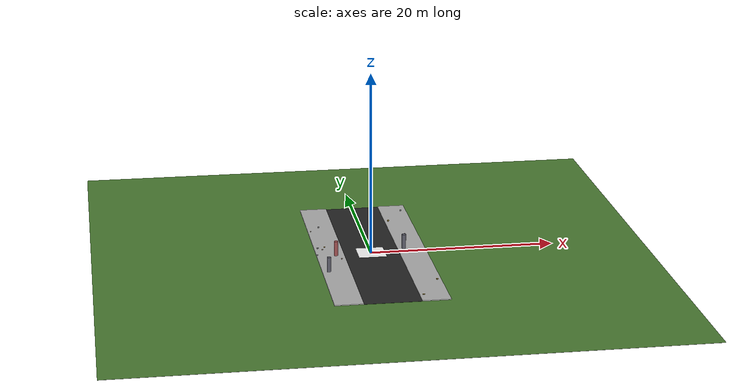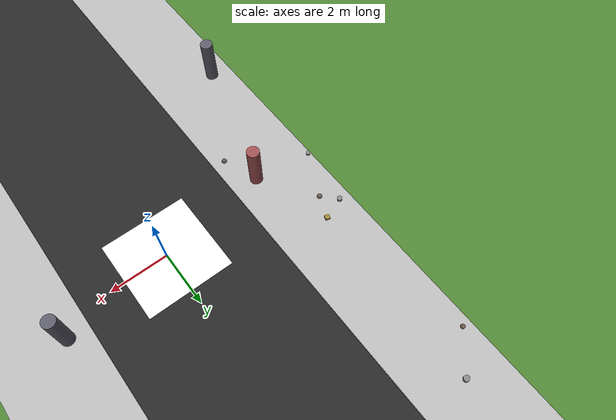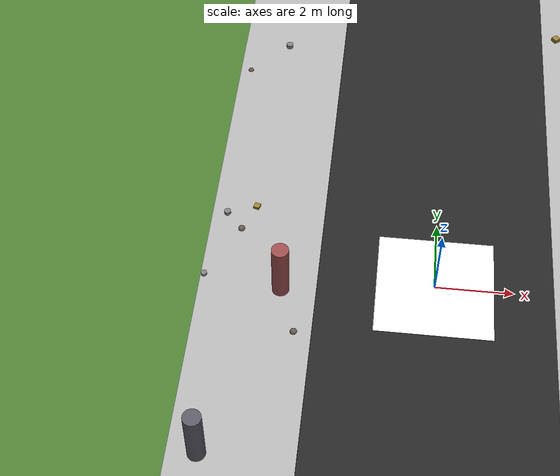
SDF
<?xml version="1.0" ?>
<sdf version="1.9">
  <world name="straight">
    <physics name="1ms" type="ignore">
      <max_step_size>0.001</max_step_size>
      <real_time_factor>1.0</real_time_factor>
    </physics>
    <plugin filename="gz-sim-physics-system" name="gz::sim::systems::Physics"/>
    <plugin filename="gz-sim-scene-broadcaster-system" name="gz::sim::systems::SceneBroadcaster"/>
    <plugin filename="gz-sim-sensors-system" name="gz::sim::systems::Sensors">
      <render_engine>ogre2</render_engine>
    </plugin>
    <plugin filename="gz-sim-user-commands-system" name="gz::sim::systems::UserCommands"/>

    <light type="directional" name="sun">
      <cast_shadows>true</cast_shadows>
      <pose>0 0 10 0 0 0</pose>
      <diffuse>0.8 0.8 0.8 1</diffuse>
      <specular>0.2 0.2 0.2 1</specular>
      <attenuation><range>1000</range><constant>0.9</constant><linear>0.01</linear><quadratic>0.001</quadratic></attenuation>
      <direction>-0.5 0.1 -0.9</direction>
    </light>

    <!-- 레이아웃 1: 직선형 -->

    <model name="ground_plane_visual">
      <static>true</static>
      <pose>0 0 -0.01 0 0 0</pose>
      <link name="link">
        <collision name="collision"><geometry><box><size>60.0 60.0 0.02</size></box></geometry></collision>
        <visual name="visual"><geometry><box><size>60.0 60.0 0.02</size></box></geometry>
          <material><ambient>0.3 0.5 0.2 1</ambient><diffuse>0.3 0.5 0.2 1</diffuse></material></visual>
      </link>
    </model>

    <model name="road">
      <static>true</static>
      <pose>0 0 0.01 0 0 0</pose>
      <link name="link">
        <collision name="collision"><geometry><box><size>6.0 30.0 0.02</size></box></geometry></collision>
        <visual name="visual"><geometry><box><size>6.0 30.0 0.02</size></box></geometry>
          <material><ambient>0.15 0.15 0.15 1</ambient><diffuse>0.15 0.15 0.15 1</diffuse></material></visual>
      </link>
    </model>

    <model name="sidewalk_left">
      <static>true</static>
      <pose>-4.5 0 0.05 0 0 0</pose>
      <link name="link">
        <collision name="collision"><geometry><box><size>3.0 30.0 0.1</size></box></geometry></collision>
        <visual name="visual"><geometry><box><size>3.0 30.0 0.1</size></box></geometry>
          <material><ambient>0.7 0.7 0.7 1</ambient><diffuse>0.7 0.7 0.7 1</diffuse></material></visual>
      </link>
    </model>

    <model name="sidewalk_right">
      <static>true</static>
      <pose>4.5 0 0.05 0 0 0</pose>
      <link name="link">
        <collision name="collision"><geometry><box><size>3.0 30.0 0.1</size></box></geometry></collision>
        <visual name="visual"><geometry><box><size>3.0 30.0 0.1</size></box></geometry>
          <material><ambient>0.7 0.7 0.7 1</ambient><diffuse>0.7 0.7 0.7 1</diffuse></material></visual>
      </link>
    </model>

    <model name="crosswalk_1">
      <static>true</static>
      <pose>0 0 0.02 0 0 0</pose>
      <link name="link">
        <collision name="collision"><geometry><box><size>3 3 0.01</size></box></geometry></collision>
        <visual name="visual"><geometry><box><size>3 3 0.01</size></box></geometry>
          <material><ambient>1 1 1 1</ambient><diffuse>1 1 1 1</diffuse></material></visual>
      </link>
    </model>

    <model name="straight_obstacle_0">
      <static>true</static>
      <pose>-4.84 2.11 0.10 0 0 1.29</pose>
      <link name="link">
        <collision name="collision"><geometry><box><size>0.16 0.16 0.16</size></box></geometry></collision>
        <visual name="visual"><geometry><box><size>0.16 0.16 0.16</size></box></geometry>
          <material><ambient>0.6 0.5 0.2 1</ambient><diffuse>0.6 0.5 0.2 1</diffuse></material></visual>
      </link>
    </model>

    <model name="straight_obstacle_1">
      <static>true</static>
      <pose>-5.91 -0.27 0.10 0 0 0</pose>
      <link name="link">
        <collision name="collision"><geometry><cylinder><radius>0.07766312713734719</radius><length>0.15532625427469438</length></cylinder></geometry></collision>
        <visual name="visual"><geometry><cylinder><radius>0.07766312713734719</radius><length>0.15532625427469438</length></cylinder></geometry>
          <material><ambient>0.5 0.5 0.5 1</ambient><diffuse>0.5 0.5 0.5 1</diffuse></material></visual>
      </link>
    </model>

    <model name="straight_obstacle_2">
      <static>true</static>
      <pose>3.42 9.72 0.12 0 0 0.66</pose>
      <link name="link">
        <collision name="collision"><geometry><box><size>0.19 0.19 0.19</size></box></geometry></collision>
        <visual name="visual"><geometry><box><size>0.19 0.19 0.19</size></box></geometry>
          <material><ambient>0.6 0.5 0.2 1</ambient><diffuse>0.6 0.5 0.2 1</diffuse></material></visual>
      </link>
    </model>

    <model name="straight_obstacle_3">
      <static>true</static>
      <pose>4.53 5.02 0.12 0 0 0</pose>
      <link name="link">
        <collision name="collision"><geometry><sphere><radius>0.09816462120183228</radius></sphere></geometry></collision>
        <visual name="visual"><geometry><sphere><radius>0.09816462120183228</radius></sphere></geometry>
          <material><ambient>0.4 0.35 0.3 1</ambient><diffuse>0.4 0.35 0.3 1</diffuse></material></visual>
      </link>
    </model>

    <model name="straight_obstacle_4">
      <static>true</static>
      <pose>5.37 13.03 0.13 0 0 0</pose>
      <link name="link">
        <collision name="collision"><geometry><cylinder><radius>0.10892858561417215</radius><length>0.2178571712283443</length></cylinder></geometry></collision>
        <visual name="visual"><geometry><cylinder><radius>0.10892858561417215</radius><length>0.2178571712283443</length></cylinder></geometry>
          <material><ambient>0.5 0.5 0.5 1</ambient><diffuse>0.5 0.5 0.5 1</diffuse></material></visual>
      </link>
    </model>

    <model name="straight_obstacle_5">
      <static>true</static>
      <pose>3.42 -13.39 0.10 0 0 0.84</pose>
      <link name="link">
        <collision name="collision"><geometry><box><size>0.16 0.16 0.16</size></box></geometry></collision>
        <visual name="visual"><geometry><box><size>0.16 0.16 0.16</size></box></geometry>
          <material><ambient>0.6 0.5 0.2 1</ambient><diffuse>0.6 0.5 0.2 1</diffuse></material></visual>
      </link>
    </model>

    <model name="straight_obstacle_6">
      <static>true</static>
      <pose>-5.15 1.32 0.11 0 0 0</pose>
      <link name="link">
        <collision name="collision"><geometry><sphere><radius>0.09026108351684428</radius></sphere></geometry></collision>
        <visual name="visual"><geometry><sphere><radius>0.09026108351684428</radius></sphere></geometry>
          <material><ambient>0.4 0.35 0.3 1</ambient><diffuse>0.4 0.35 0.3 1</diffuse></material></visual>
      </link>
    </model>

    <model name="straight_obstacle_7">
      <static>true</static>
      <pose>5.58 -9.28 0.10 0 0 0.37</pose>
      <link name="link">
        <collision name="collision"><geometry><box><size>0.17 0.17 0.17</size></box></geometry></collision>
        <visual name="visual"><geometry><box><size>0.17 0.17 0.17</size></box></geometry>
          <material><ambient>0.6 0.5 0.2 1</ambient><diffuse>0.6 0.5 0.2 1</diffuse></material></visual>
      </link>
    </model>

    <model name="straight_obstacle_8">
      <static>true</static>
      <pose>-4.66 8.59 0.12 0 0 0</pose>
      <link name="link">
        <collision name="collision"><geometry><cylinder><radius>0.09802618285656882</radius><length>0.19605236571313764</length></cylinder></geometry></collision>
        <visual name="visual"><geometry><cylinder><radius>0.09802618285656882</radius><length>0.19605236571313764</length></cylinder></geometry>
          <material><ambient>0.5 0.5 0.5 1</ambient><diffuse>0.5 0.5 0.5 1</diffuse></material></visual>
      </link>
    </model>

    <model name="straight_obstacle_9">
      <static>true</static>
      <pose>-5.60 1.82 0.11 0 0 0</pose>
      <link name="link">
        <collision name="collision"><geometry><cylinder><radius>0.0880961186211831</radius><length>0.1761922372423662</length></cylinder></geometry></collision>
        <visual name="visual"><geometry><cylinder><radius>0.0880961186211831</radius><length>0.1761922372423662</length></cylinder></geometry>
          <material><ambient>0.5 0.5 0.5 1</ambient><diffuse>0.5 0.5 0.5 1</diffuse></material></visual>
      </link>
    </model>

    <model name="straight_obstacle_10">
      <static>true</static>
      <pose>-5.70 7.44 0.10 0 0 0</pose>
      <link name="link">
        <collision name="collision"><geometry><sphere><radius>0.07838120416145235</radius></sphere></geometry></collision>
        <visual name="visual"><geometry><sphere><radius>0.07838120416145235</radius></sphere></geometry>
          <material><ambient>0.4 0.35 0.3 1</ambient><diffuse>0.4 0.35 0.3 1</diffuse></material></visual>
      </link>
    </model>

    <model name="straight_obstacle_11">
      <static>true</static>
      <pose>-3.44 -1.80 0.11 0 0 0</pose>
      <link name="link">
        <collision name="collision"><geometry><sphere><radius>0.08949282911119054</radius></sphere></geometry></collision>
        <visual name="visual"><geometry><sphere><radius>0.08949282911119054</radius></sphere></geometry>
          <material><ambient>0.4 0.35 0.3 1</ambient><diffuse>0.4 0.35 0.3 1</diffuse></material></visual>
      </link>
    </model>

    <model name="straight_pedestrian_static_0">
      <static>true</static>
      <pose>3.69 0.59 0.85 0 0 0</pose>
      <link name="link">
        <collision name="collision"><geometry><cylinder><radius>0.22</radius><length>1.7</length></cylinder></geometry></collision>
        <visual name="visual"><geometry><cylinder><radius>0.22</radius><length>1.7</length></cylinder></geometry>
          <material><ambient>0.35 0.35 0.4 1</ambient><diffuse>0.35 0.35 0.4 1</diffuse></material></visual>
      </link>
    </model>

    <model name="straight_pedestrian_static_1">
      <static>true</static>
      <pose>-5.28 -5.33 0.85 0 0 0</pose>
      <link name="link">
        <collision name="collision"><geometry><cylinder><radius>0.22</radius><length>1.7</length></cylinder></geometry></collision>
        <visual name="visual"><geometry><cylinder><radius>0.22</radius><length>1.7</length></cylinder></geometry>
          <material><ambient>0.35 0.35 0.4 1</ambient><diffuse>0.35 0.35 0.4 1</diffuse></material></visual>
      </link>
    </model>

    <model name="straight_pedestrian_dynamic_0">
      <static>false</static>
      <pose>-3.90 -0.54 0.85 0 0 0</pose>
      <link name="link">
        <collision name="collision"><geometry><cylinder><radius>0.22</radius><length>1.7</length></cylinder></geometry></collision>
        <visual name="visual"><geometry><cylinder><radius>0.22</radius><length>1.7</length></cylinder></geometry>
          <material><ambient>0.6 0.3 0.3 1</ambient><diffuse>0.6 0.3 0.3 1</diffuse></material></visual>
      </link>
    </model>

  </world>
</sdf>
